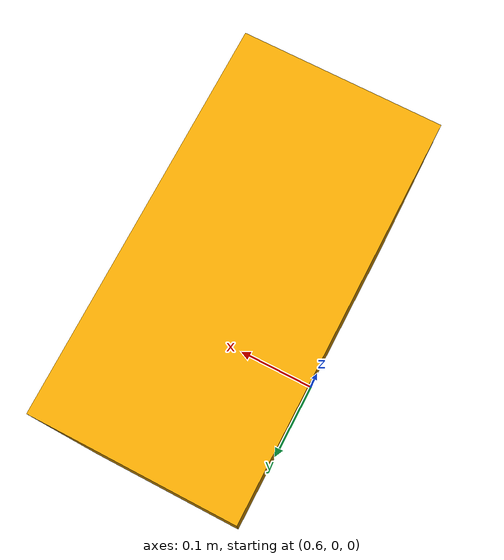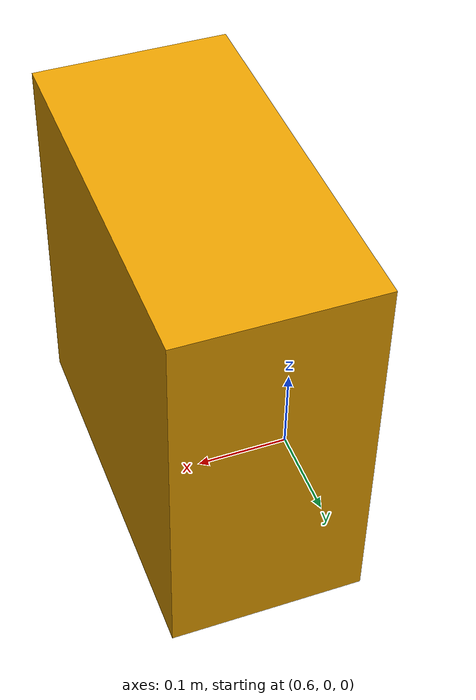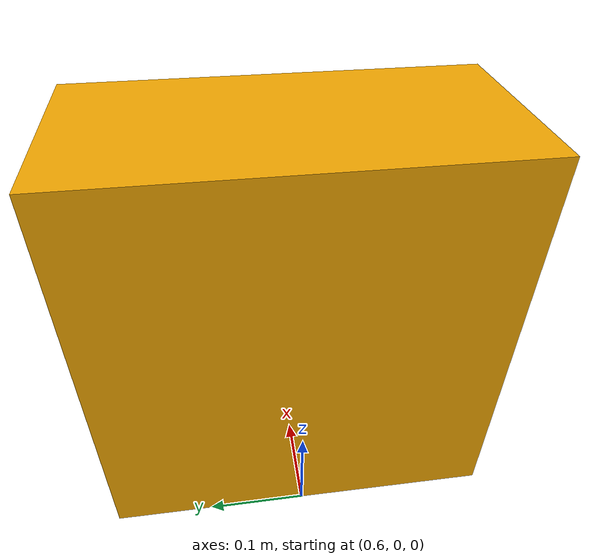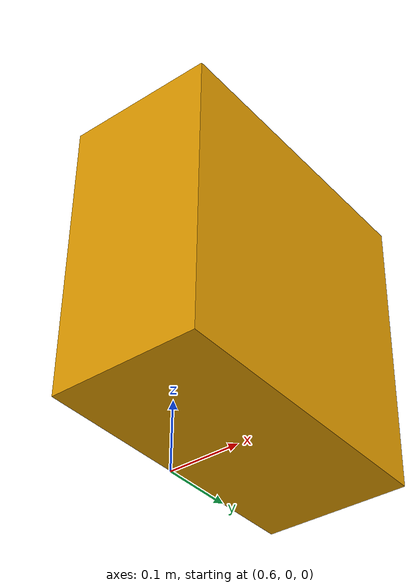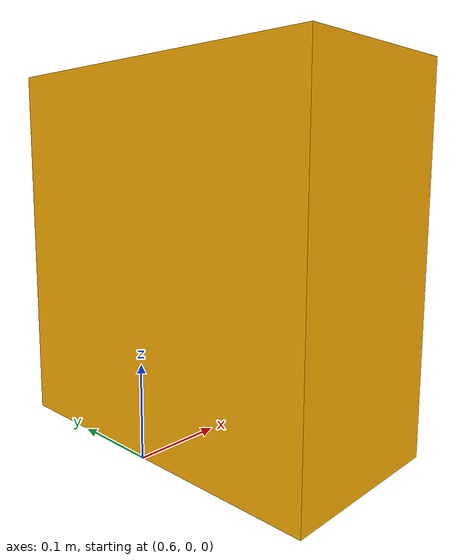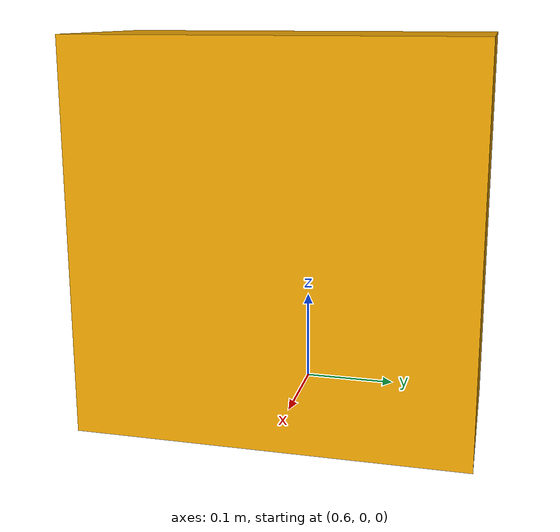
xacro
<robot name="table1">
  <link name="table1">
    <inertial>
      <origin xyz="0.7 0 0.0" />
      <mass value="1.0" />
      <inertia  ixx="1.0" ixy="0.0"  ixz="0.0"  iyy="100.0"  iyz="0.0"  izz="1.0" />
    </inertial>
    <visual>
      <origin xyz="0.7 0 0.2"/>
      <geometry>
        <box size="0.2 0.4 0.4" />
      </geometry>
    </visual>
    <collision>
      <origin xyz="0.7 0 0.2"/>
      <geometry>
        <box size="0.2 0.4 0.4" />
      </geometry>
    </collision>
  </link>
  <gazebo reference="my_box">
    <material>Gazebo/Green</material>
  </gazebo>
</robot>
